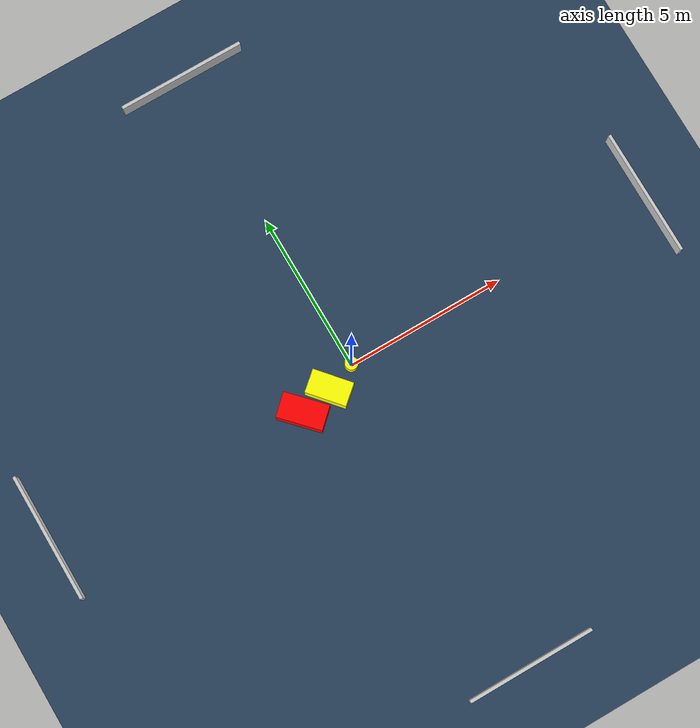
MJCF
<?xml version="1.0" ?>
<mujoco model="generated_environment">
  <option timestep="0.01" integrator="RK4" cone="elliptic"/>
  <default>
    <geom density="1"/>
  </default>
  <asset>
    <texture builtin="gradient" height="3072" name="skybox" rgb1="0.3 0.5 0.7" rgb2="0 0 0" type="skybox" width="512"/>
    <texture builtin="checker" height="300" name="groundplane" rgb1="0.2 0.3 0.4" rgb2="0.1 0.2 0.3" type="2d" width="300"/>
    <material name="groundplane" reflectance="0.2" texrepeat="5 5" texture="groundplane"/>
  </asset>
  <worldbody>
    <light dir="0 0 -1" directional="true" pos="0 0 1.5"/>
    <geom condim="3" friction="0.5 0.005 0.001" material="groundplane" name="floor" pos="0 0 0" size="0 0 0.05" type="plane"/>
    <body name="walls">
      <geom name="wall_1" condim="4" pos="-10.0 0.0 0.3" rgba="0.800000011920929 0.800000011920929 0.800000011920929 1.0" size="0.05 2.0 0.3" type="box"/>
      <geom name="wall_2" condim="4" pos="10.0 0.0 0.3" rgba="0.800000011920929 0.800000011920929 0.800000011920929 1.0" size="0.05 2.0 0.3" type="box"/>
      <geom name="wall_3" condim="4" pos="0.0 -10.0 0.3" rgba="0.800000011920929 0.800000011920929 0.800000011920929 1.0" size="2.0 0.05 0.3" type="box"/>
      <geom name="wall_4" condim="4" pos="0.0 10.0 0.3" rgba="0.800000011920929 0.800000011920929 0.800000011920929 1.0" size="2.0 0.05 0.3" type="box"/>
    </body>
    <body name="robot">
      <joint name="joint_x" type="slide" pos="0 0 0" axis="1 0 0"/>
      <joint name="joint_y" type="slide" pos="0 0 0" axis="0 1 0"/>
      <geom name="robot" type="cylinder" pos="0.0 0.0 0.2" size="0.2 0.2 0.0" mass="5.0" friction="1.0 0.005 0.0001" condim="4" rgba="1.0 1.0 0.0 1.0"/>
    </body>
    <body name="obstacle_1_movable">
      <geom name="obstacle_1_movable" condim="4" pos="-0.9212397363683256 -0.3200829410987787 0.3" euler="0 0 40.6259811711785" friction="0.0 0.005 0.001" rgba="1.0 1.0 0.0 1.0" size="0.36472997436712873 0.6302082909310337 0.3" type="box" mass="0.1"/>
      <joint type="free"/>
    </body>
    <body name="obstacle_2_static">
      <geom name="obstacle_2_static" condim="4" pos="-1.924972042490854 -0.5262378640810457 0.3" euler="0 0 133.1724537954362" friction="0.0 0.005 0.001" rgba="1.0 0.0 0.0 1.0" size="0.7023823555433057 0.388918026722319 0.3" type="box"/>
    </body>
  </worldbody>
  <actuator>
    <motor name="actuator_x" joint="joint_x" gear="1" ctrlrange="-1 1"/>
    <motor name="actuator_y" joint="joint_y" gear="1" ctrlrange="-1 1"/>
  </actuator>
</mujoco>
